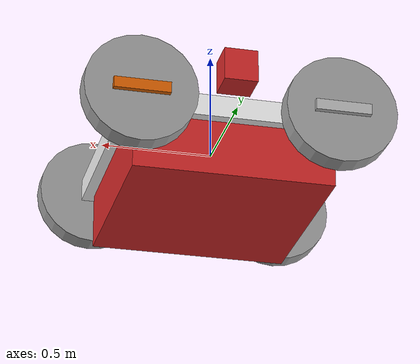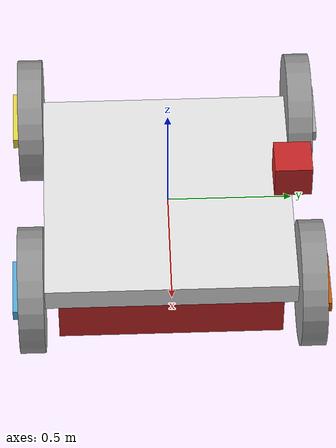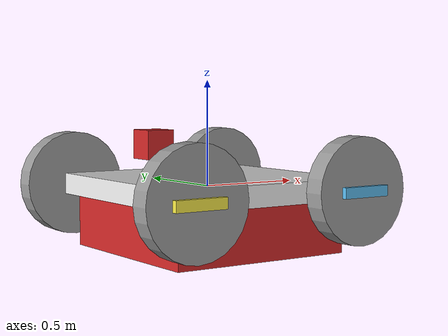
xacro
<?xml version="1.0"?>
<!--
	Space Robotics Challenge (2)
	NASA-JSC
	Copyright (c) 2019, All Rights Reserved
	Unauthorized distribution strictly prohibited

-->
<robot name="simple_robot"
	xmlns:xacro="http://www.ros.org/wiki/xacro">

	<!-- _______________________________________________________________________________________________________________
         General Includes
    -->
	<!-- Load the base testing robot-->
	<xacro:include filename="../common/simple_robot.xacro" />

	<!-- Custom Plugins -->
	<xacro:include filename="battery_bot.gazebo" />
	<!-- support block to prop robot up -->
	<xacro:include filename="support_block.xacro" />
	<!-- charging port for simulating charging -->
	<xacro:include filename="charging_port.xacro" />

	<support_block/>
	<charging_port link_name="charging_port"/>

</robot>

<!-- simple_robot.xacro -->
<!--
	Space Robotics Challenge (2)
	NASA-JSC
	Copyright (c) 2019, All Rights Reserved
	Unauthorized distribution strictly prohibited

	4-wheeled simple robot for testing plugins
-->
<robot name="simple_robot"
	xmlns:xacro="http://www.ros.org/wiki/xacro">

	<!-- _______________________________________________________________________________________________________________
         General Includes
    -->
	<!-- todo: is this relative to THIS file or included file ?? -->
	<xacro:include filename="properties.xacro" />
	<xacro:include filename="materials.xacro" />
	<xacro:include filename="macros.xacro" />
	<xacro:include filename="simple_robot.gazebo" />

	<!-- Part/Link xacros -->
	<xacro:include filename="chassis.xacro" />
	<xacro:include filename="wheel.xacro" />

	<!-- Chassis -->
	<xacro:chassis/>

	<!-- Wheels -->
	<wheel flbr="br" fb="-1" lr= "-1"/>
	<wheel flbr="fl" fb="1" lr= "1" />
	<wheel flbr="bl" fb="-1" lr= "1" />
	<wheel flbr="fr" fb="1" lr= "-1"/>

</robot>

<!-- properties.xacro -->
<robot xmlns:xacro="http://www.ros.org/wiki/xacro">
	<!-- _______________________________________________________________________________________________________________
         Common Constants Definition
    -->

	<!-- Chassis -->
	<xacro:property name="chassis_height" value="0.1" />
	<xacro:property name="chassis_length" value="1"/>
	<xacro:property name="chassis_width" value="1" />
	<xacro:property name="chassis_mass" value="50"/>

	<xacro:property name="support_height" value="${wheel_radius}" />
	<xacro:property name="support_length" value="${chassis_length * 0.9}"/>
	<xacro:property name="support_width" value="${chassis_width * 0.9}" />
	<xacro:property name="support_mass" value="100"/>

	<!-- Wheels -->
	<xacro:property name="wheel_mu1" value="0.9"/>
	<xacro:property name="wheel_mu2" value="0.9"/>

	<xacro:property name="wheel_width" value="0.1"/>
	<xacro:property name="wheel_radius" value="0.25"/>
	<xacro:property name="wheel_mass" value="10"/>

</robot>

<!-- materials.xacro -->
<!--
	Space Robotics Challenge (2)
	NASA-JSC
	Copyright (c) 2019, All Rights Reserved
	Unauthorized distribution strictly prohibited

	This XACRO file defines colors used by the robots
-->
<robot>

	<material name="black">
	  <color rgba="0.0 0.0 0.0 1.0"/>
	</material>

	<material name="blue">
	  <color rgba="0.0 0.0 0.8 1.0"/>
	</material>

	<material name="green">
	  <color rgba="0.0 0.8 0.0 1.0"/>
	</material>

	<material name="grey">
	  <color rgba="0.2 0.2 0.2 1.0"/>
	</material>

	<material name="orange">
	  <color rgba="${255/255} ${108/255} ${10/255} 1.0"/>
	</material>

	<material name="brown">
	  <color rgba="${165/255} ${106/255} ${3/255} 1.0"/>
	</material>

	<material name="gold">
	  <color rgba="${202/255} ${187/255} ${73/255} .9"/>
	</material>

	<material name="red">
	  <color rgba="0.8 0.0 0.0 1.0"/>
	</material>

	<material name="white">
	  <color rgba="1.0 1.0 1.0 1.0"/>
	</material>

	<material name="developer_blue">
		<color rgba="${68/255} ${125/255} ${175/255} 1.0" />
	</material>

</robot>

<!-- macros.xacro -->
<robot xmlns:xacro="http://www.ros.org/wiki/xacro">

    <xacro:macro name="cylinder_inertia" params="m r h">
    <inertia  ixx="${m*(3*r*r+h*h)/12}" ixy = "0" ixz = "0"
        iyy="${m*(3*r*r+h*h)/12}" iyz = "0"
        izz="${m*r*r/2}"
    />
    </xacro:macro>

    <xacro:macro name="box_inertia" params="m x y z">
    <inertia  ixx="${m*(y*y+z*z)/12}" ixy = "0" ixz = "0"
        iyy="${m*(x*x+z*z)/12}" iyz = "0"
        izz="${m*(x*x+z*z)/12}"
    />
    </xacro:macro>

    <xacro:macro name="sphere_inertia" params="m r">
    <inertia  ixx="${2*m*r*r/5}" ixy = "0" ixz = "0"
        iyy="${2*m*r*r/5}" iyz = "0"
        izz="${2*m*r*r/5}"
    />
    </xacro:macro>
</robot>

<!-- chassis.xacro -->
<!--
	Space Robotics Challenge (2)
	NASA-JSC
	Copyright (c) 2019, All Rights Reserved
	Unauthorized distribution strictly prohibited

	This XACRO file defines the chassis macro for a test robot
-->
<robot xmlns:xacro="http://www.ros.org/wiki/xacro">
    <xacro:macro name="chassis">

        <link name="base_footprint" />

        <joint name="base_joint" type="fixed">
            <origin xyz="0 0 0" rpy="0 0 0" />
            <parent link="base_footprint"/>
            <child link="chassis"/>
        </joint>

        <link name='chassis'>
            <collision>
                <origin xyz="0 0 0" rpy="0 0 0"/>
                <geometry>
                    <box size="${chassis_length} ${chassis_width} ${chassis_height}"/>
                </geometry>
            </collision>
            <visual>
                <origin xyz="0 0 0" rpy="0 0 0"/>
                <geometry>
                    <box size="${chassis_length} ${chassis_width} ${chassis_height}"/>
                </geometry>
            </visual>
            <inertial>
                <origin xyz="0 0 0" rpy="0 0 0"/>
                <mass value="${chassis_mass}"/>
                <box_inertia m="${chassis_mass}" x="${chassis_length}" y="${chassis_width}" z="${chassis_height}"/>
            </inertial>
        </link>

        <gazebo reference="chassis">
            <material>Gazebo/White</material>
        </gazebo>

    </xacro:macro>
</robot>

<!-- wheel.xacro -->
<robot xmlns:xacro="http://www.ros.org/wiki/xacro">
    <xacro:macro name="wheel" params="flbr fb lr">

        <link name="${flbr}_wheel">
            <collision>
                <origin xyz="0 0 0" rpy="0 0 0" />
                <geometry>
                    <cylinder length="${wheel_width}" radius="${wheel_radius}"/>
                </geometry>
            </collision>
            <visual>
                <origin xyz="0 0 0" rpy="0 0 0" />
                <geometry>
                    <cylinder length="${wheel_width}" radius="${wheel_radius}"/>
                </geometry>
            </visual>
            <visual>
                <origin xyz="0 0 0" rpy="0 0 0" />
                <geometry>
                    <cylinder length="${wheel_width}" radius="${wheel_radius}"/>
                </geometry>
            </visual>
            <inertial>
                <origin xyz="0 0 0" rpy="0 0 0" />
                <mass value="${wheel_mass}"/>
                <cylinder_inertia m="${wheel_mass}" r="${wheel_radius}" h="${wheel_width}"/>
            </inertial>
        </link>

        <joint name="${flbr}_wheel_joint" type="continuous">
            <parent link="chassis"/>
            <child link="${flbr}_wheel"/>
            <origin xyz="${chassis_length*fb/2.25} ${ lr * (chassis_width/2 + wheel_width/2)} 0" rpy="0 ${pi/2} ${pi/2 * lr}" />
            <axis xyz="0 0 ${lr}" rpy="0 0 0" />
            <limit effort="10000" velocity="10"/>
            <dynamics friction="5"/>
        </joint>

        <transmission name="${flbr}_wheel_trans">
            <type>transmission_interface/SimpleTransmission</type>
            <joint name="${flbr}_wheel_joint">
                <hardwareInterface>hardware_interface/EffortJointInterface</hardwareInterface>
            </joint>
            <actuator name="${flbr}_wheel_motor">
                <hardwareInterface>hardware_interface/EffortJointInterface</hardwareInterface>
                <mechanicalReduction>1</mechanicalReduction>
            </actuator>
        </transmission>

        <gazebo reference="${flbr}_wheel">
            <material>Gazebo/Gray</material>
        </gazebo>

        <link name="${flbr}_wheel_visualizer">
            <visual>
                <origin xyz="0 0 0" rpy="0 0 0" />
                <geometry>
                    <box size="0.05 0.05 0.25"/>
                </geometry>
            </visual>
        </link>
        <joint name="${flbr}_wheel_visualizer_joint" type="fixed">
            <parent link="${flbr}_wheel"/>
            <child link="${flbr}_wheel_visualizer"/>
            <origin xyz="0 0 ${wheel_width/2}" rpy="0 ${pi/2} ${pi/2}" />
        </joint>

    </xacro:macro>
</robot>

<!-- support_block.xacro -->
<!--
	Space Robotics Challenge (2)
	NASA-JSC
	Copyright (c) 2019, All Rights Reserved
	Unauthorized distribution strictly prohibited

	Support block for lifting the wheels off the ground
-->
<robot xmlns:xacro="http://www.ros.org/wiki/xacro">
    <xacro:macro name="support_block">

        <link name="support_block">
            <collision>
                <origin xyz="0 0 0" rpy="0 0 0" />
                <geometry>
                    <box size="${support_length} ${support_width} ${support_height}"/>
                </geometry>
            </collision>
            <visual>
                <origin xyz="0 0 0" rpy="0 0 0" />
                <geometry>
                    <box size="${support_length} ${support_width} ${support_height}"/>
                </geometry>
            </visual>
            <inertial>
                <origin xyz="0 0 0" rpy="0 0 0" />
                <mass value="${support_mass}"/>
                <box_inertia m="${support_mass}" x="${support_length}" y="${support_width}" z="${support_height}"/>
           </inertial>
        </link>

        <joint name="support_block_joint" type="fixed">
            <parent link="chassis"/>
            <child link="support_block"/>
            <origin xyz="0 0 -${chassis_height/2 + support_height/2}" rpy="0 0 0" />
            <axis xyz="0 1 0" rpy="0 0 0" />
        </joint>

        <gazebo reference="support_block">
            <material>Gazebo/Red</material>
        </gazebo>
    </xacro:macro>
</robot>

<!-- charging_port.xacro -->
<!--
	Space Robotics Challenge (2)
	NASA-JSC
	Copyright (c) 2019, All Rights Reserved
    Unauthorized distribution strictly prohibited

    generic xacro for either a charging link or charging port
-->
<robot xmlns:xacro="http://www.ros.org/wiki/xacro">
    <xacro:macro name="charging_port" params="link_name">

        <xacro:property name="charging_port_length" value="0.15"/>
        <xacro:property name="charging_port_width" value="0.15"/>
        <xacro:property name="charging_port_height" value="0.15"/>
        <xacro:property name="charging_port_mass" value="0.15"/>

        <link name="${link_name}">
            <collision>
                <origin xyz="0 0 0" rpy="0 0 0" />
                <geometry>
                    <box size="${charging_port_length} ${charging_port_width} ${charging_port_height}"/>
                </geometry>
            </collision>
            <visual>
                <origin xyz="0 0 0" rpy="0 0 0" />
                <geometry>
                    <box size="${charging_port_length} ${charging_port_width} ${charging_port_height}"/>
                </geometry>
            </visual>
            <inertial>
                <origin xyz="0 0 0" rpy="0 0 0" />
                <mass value="${charging_port_mass}"/>
                <box_inertia m="${charging_port_mass}" x="${charging_port_length}" y="${charging_port_width}" z="${charging_port_height}"/>
           </inertial>
        </link>

        <joint name="${link_name}_joint" type="fixed">
            <parent link="chassis"/>
            <child link="${link_name}"/>
            <origin xyz=" 0 ${chassis_width/2} ${chassis_height + charging_port_height/2}" rpy="0 0 0" />
        </joint>

        <gazebo reference="${link_name}_joint">
            <disableFixedJointLumping>true</disableFixedJointLumping>
            <preserveFixedJoint>true</preserveFixedJoint>
        </gazebo>

        <gazebo reference="${link_name}">
            <material>Gazebo/Red</material>
        </gazebo>

    </xacro:macro>
</robot>
